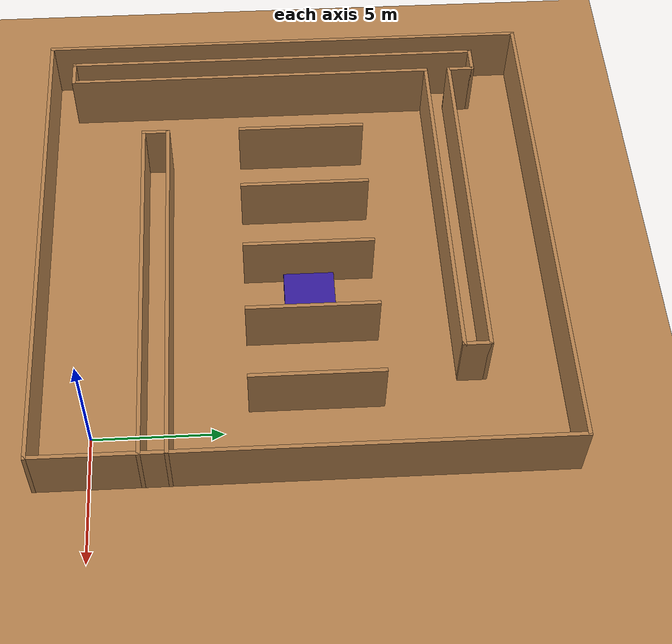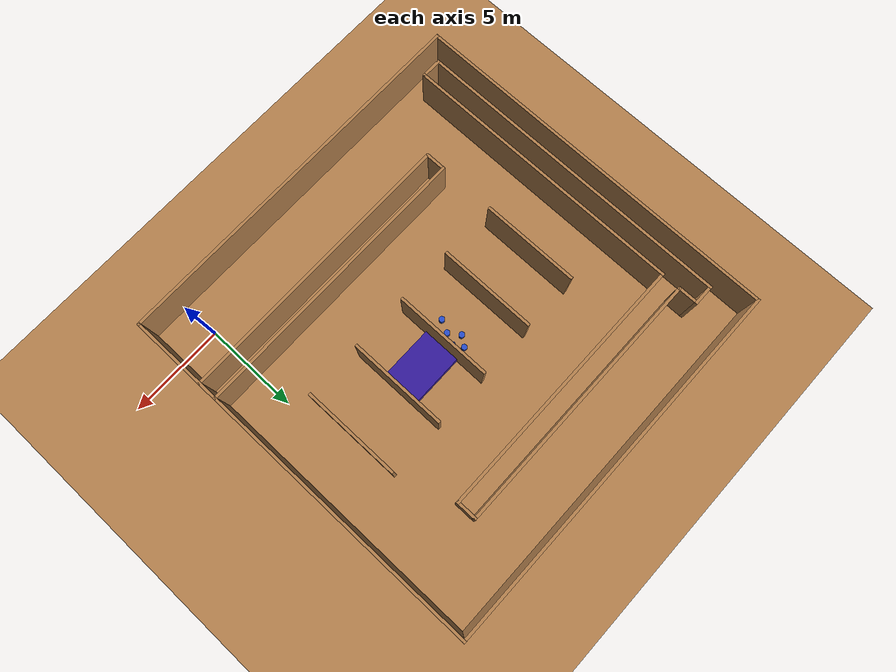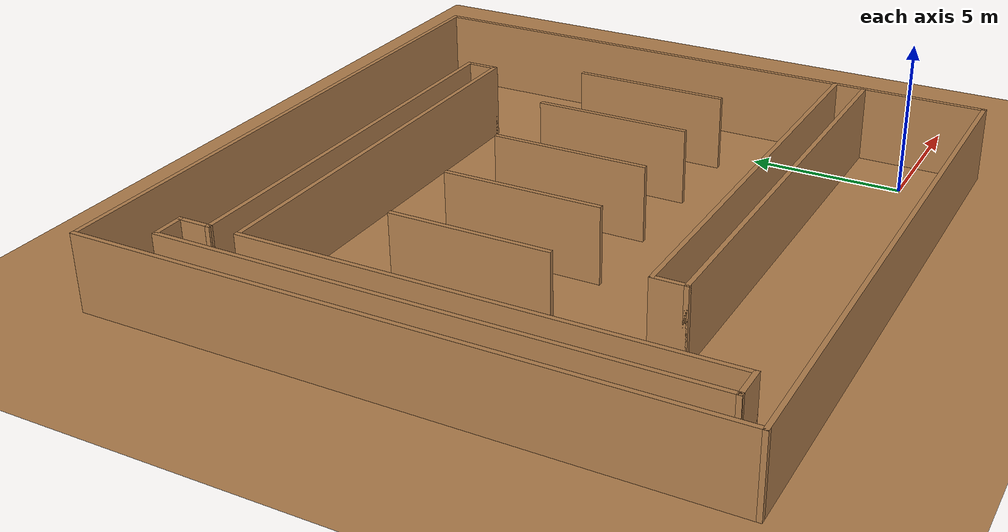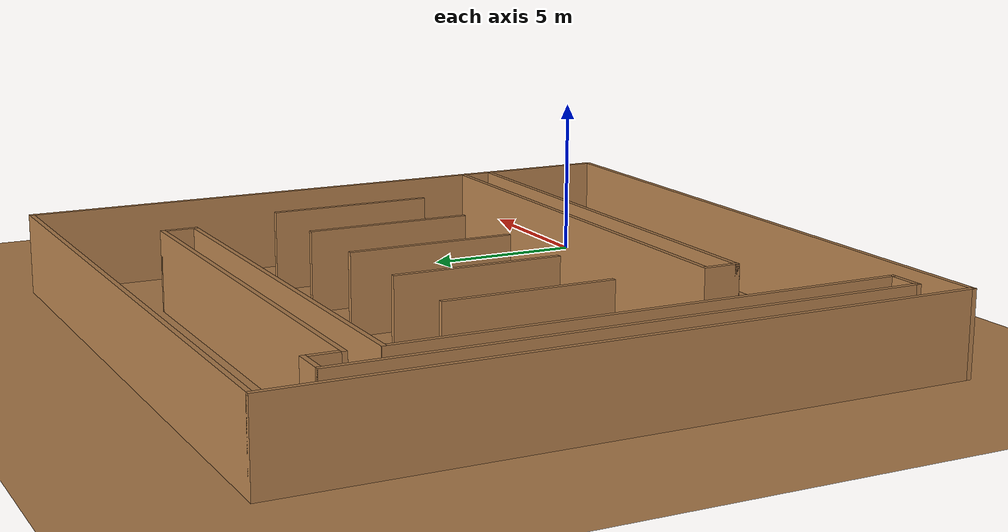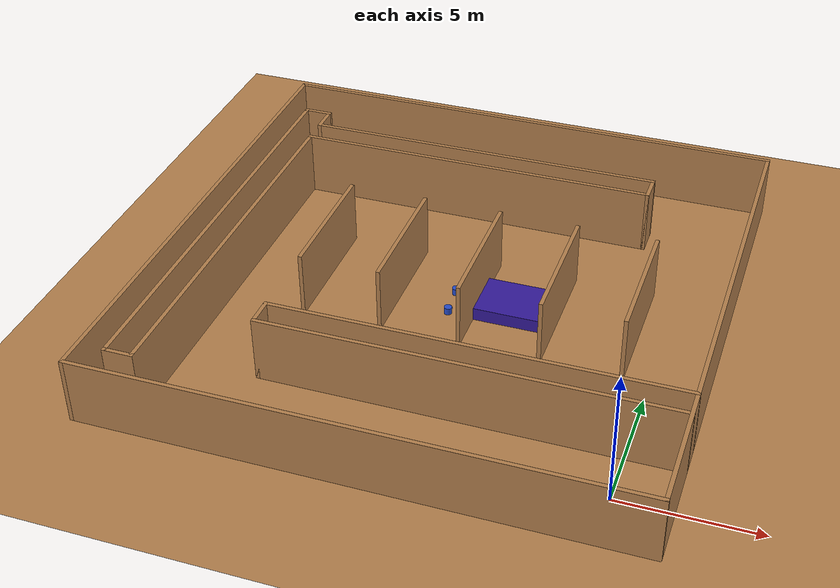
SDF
<sdf version="1.6">
 <world name="default">
  <model name="ground_plane">
   <pose>-8 8 0 0 -0 0</pose>
   <static>1</static>
   <link name="link">
    <collision name="collision">
     <geometry><plane><normal>0 0 1</normal><size>100 100</size></plane></geometry>
     <surface>
      <contact><collide_bitmask>65535</collide_bitmask></contact>
      <friction><ode><mu>100</mu><mu2>50</mu2></ode></friction>
     </surface>
    </collision>
    <visual name="visual">
     <cast_shadows>0</cast_shadows>
     <geometry><plane><normal>0 0 1</normal><size>20 20</size></plane></geometry>
     <material>
      <script><uri>file://media/materials/scripts/gazebo.material</uri><name>Gazebo/WoodFloor</name></script>
     </material>
    </visual>
   </link>
  </model>
  <model name="A1.world">
   <pose>-8 8 0 0 -0 0</pose>
   <link name="Wall_35">
    <collision name="Wall_35_Collision">
     <geometry><box><size>17.15 0.15 2.5</size></box></geometry>
     <pose>0 0 1.25 0 -0 0</pose>
    </collision>
    <visual name="Wall_35_Visual">
     <pose>0 0 1.25 0 -0 0</pose>
     <geometry><box><size>17.15 0.15 2.5</size></box></geometry>
     <material>
      <script><uri>file://media/materials/scripts/gazebo.material</uri><name>Gazebo/Wood</name></script>
      <ambient>1 1 1 1</ambient>
     </material>
     <meta><layer>0</layer></meta>
    </visual>
    <pose>-9 -0.5 0 0 -0 1.5708</pose>
   </link>
   <link name="Wall_37">
    <collision name="Wall_37_Collision">
     <geometry><box><size>1.15 0.15 2.5</size></box></geometry>
     <pose>0 0 1.25 0 -0 0</pose>
    </collision>
    <visual name="Wall_37_Visual">
     <pose>0 0 1.25 0 -0 0</pose>
     <geometry><box><size>1.15 0.15 2.5</size></box></geometry>
     <material>
      <script><uri>file://media/materials/scripts/gazebo.material</uri><name>Gazebo/Wood</name></script>
      <ambient>1 1 1 1</ambient>
     </material>
     <meta><layer>0</layer></meta>
    </visual>
    <pose>-8.5 8 0 0 -0 0</pose>
   </link>
   <link name="Wall_39">
    <collision name="Wall_39_Collision">
     <geometry><box><size>1.15 0.15 2.5</size></box></geometry>
     <pose>0 0 1.25 0 -0 0</pose>
    </collision>
    <visual name="Wall_39_Visual">
     <pose>0 0 1.25 0 -0 0</pose>
     <geometry><box><size>1.15 0.15 2.5</size></box></geometry>
     <material>
      <script><uri>file://media/materials/scripts/gazebo.material</uri><name>Gazebo/Wood</name></script>
      <ambient>1 1 1 1</ambient>
     </material>
     <meta><layer>0</layer></meta>
    </visual>
    <pose>-8.5 -9 0 0 -0 0</pose>
   </link>
   <link name="Wall_4">
    <collision name="Wall_4_Collision">
     <geometry><box><size>20.15 0.15 2.5</size></box></geometry>
     <pose>0 0 1.25 0 -0 0</pose>
    </collision>
    <visual name="Wall_4_Visual">
     <pose>0 0 1.25 0 -0 0</pose>
     <geometry><box><size>20.15 0.15 2.5</size></box></geometry>
     <material>
      <script><uri>file://media/materials/scripts/gazebo.material</uri><name>Gazebo/Wood</name></script>
      <ambient>1 1 1 1</ambient>
     </material>
     <meta><layer>0</layer></meta>
    </visual>
    <pose>-10 0 0 0 -0 1.5708</pose>
   </link>
   <link name="Wall_41">
    <collision name="Wall_41_Collision">
     <geometry><box><size>15.15 0.15 2.5</size></box></geometry>
     <pose>0 0 1.25 0 -0 0</pose>
    </collision>
    <visual name="Wall_41_Visual">
     <pose>0 0 1.25 0 -0 0</pose>
     <geometry><box><size>15.15 0.15 2.5</size></box></geometry>
     <material>
      <script><uri>file://media/materials/scripts/gazebo.material</uri><name>Gazebo/Wood</name></script>
      <ambient>1 1 1 1</ambient>
     </material>
     <meta><layer>0</layer></meta>
    </visual>
    <pose>-8 -1.5 0 0 -0 1.5708</pose>
   </link>
   <link name="Wall_43">
    <collision name="Wall_43_Collision">
     <geometry><box><size>1.15 0.15 2.5</size></box></geometry>
     <pose>0 0 1.25 0 -0 0</pose>
    </collision>
    <visual name="Wall_43_Visual">
     <pose>0 0 1.25 0 -0 0</pose>
     <geometry><box><size>1.15 0.15 2.5</size></box></geometry>
     <material>
      <script><uri>file://media/materials/scripts/gazebo.material</uri><name>Gazebo/Wood</name></script>
      <ambient>1 1 1 1</ambient>
     </material>
     <meta><layer>0</layer></meta>
    </visual>
    <pose>-8 7.5 0 0 -0 1.5708</pose>
   </link>
   <link name="Wall_45">
    <collision name="Wall_45_Collision">
     <geometry><box><size>14.15 0.15 2.5</size></box></geometry>
     <pose>0 0 1.25 0 -0 0</pose>
    </collision>
    <visual name="Wall_45_Visual">
     <pose>0 0 1.25 0 -0 0</pose>
     <geometry><box><size>14.15 0.15 2.5</size></box></geometry>
     <material>
      <script><uri>file://media/materials/scripts/gazebo.material</uri><name>Gazebo/Wood</name></script>
      <ambient>1 1 1 1</ambient>
     </material>
     <meta><layer>0</layer></meta>
    </visual>
    <pose>-1 7 0 0 -0 0</pose>
   </link>
   <link name="Wall_47">
    <collision name="Wall_47_Collision">
     <geometry><box><size>14.15 0.15 2.5</size></box></geometry>
     <pose>0 0 1.25 0 -0 0</pose>
    </collision>
    <visual name="Wall_47_Visual">
     <pose>0 0 1.25 0 -0 0</pose>
     <geometry><box><size>14.15 0.15 2.5</size></box></geometry>
     <material>
      <script><uri>file://media/materials/scripts/gazebo.material</uri><name>Gazebo/Wood</name></script>
      <ambient>1 1 1 1</ambient>
     </material>
     <meta><layer>0</layer></meta>
    </visual>
    <pose>-1 6 0 0 -0 0</pose>
   </link>
   <link name="Wall_49">
    <collision name="Wall_49_Collision">
     <geometry><box><size>1.15 0.15 2.5</size></box></geometry>
     <pose>0 0 1.25 0 -0 0</pose>
    </collision>
    <visual name="Wall_49_Visual">
     <pose>0 0 1.25 0 -0 0</pose>
     <geometry><box><size>1.15 0.15 2.5</size></box></geometry>
     <material>
      <script><uri>file://media/materials/scripts/gazebo.material</uri><name>Gazebo/Wood</name></script>
      <ambient>1 1 1 1</ambient>
     </material>
     <meta><layer>0</layer></meta>
    </visual>
    <pose>6 6.5 0 0 -0 1.5708</pose>
   </link>
   <link name="Wall_5">
    <collision name="Wall_5_Collision">
     <geometry><box><size>20.15 0.15 2.5</size></box></geometry>
     <pose>0 0 1.25 0 -0 0</pose>
    </collision>
    <visual name="Wall_5_Visual">
     <pose>0 0 1.25 0 -0 0</pose>
     <geometry><box><size>20.15 0.15 2.5</size></box></geometry>
     <material>
      <script><uri>file://media/materials/scripts/gazebo.material</uri><name>Gazebo/Wood</name></script>
      <ambient>1 1 1 1</ambient>
     </material>
     <meta><layer>0</layer></meta>
    </visual>
    <pose>-0 10 0 0 -0 0</pose>
   </link>
   <link name="Wall_51">
    <collision name="Wall_51_Collision">
     <geometry><box><size>15.15 0.15 2.5</size></box></geometry>
     <pose>0 0 1.25 0 -0 0</pose>
    </collision>
    <visual name="Wall_51_Visual">
     <pose>0 0 1.25 0 -0 0</pose>
     <geometry><box><size>15.15 0.15 2.5</size></box></geometry>
     <material>
      <script><uri>file://media/materials/scripts/gazebo.material</uri><name>Gazebo/Wood</name></script>
      <ambient>1 1 1 1</ambient>
     </material>
     <meta><layer>0</layer></meta>
    </visual>
    <pose>2.5 -6 0 0 -0 0</pose>
   </link>
   <link name="Wall_53">
    <collision name="Wall_53_Collision">
     <geometry><box><size>15.15 0.15 2.5</size></box></geometry>
     <pose>0 0 1.25 0 -0 0</pose>
    </collision>
    <visual name="Wall_53_Visual">
     <pose>0 0 1.25 0 -0 0</pose>
     <geometry><box><size>15.15 0.15 2.5</size></box></geometry>
     <material>
      <script><uri>file://media/materials/scripts/gazebo.material</uri><name>Gazebo/Wood</name></script>
      <ambient>1 1 1 1</ambient>
     </material>
     <meta><layer>0</layer></meta>
    </visual>
    <pose>2.5 -5 0 0 -0 3.14159</pose>
   </link>
   <link name="Wall_55">
    <collision name="Wall_55_Collision">
     <geometry><box><size>1.15 0.15 2.5</size></box></geometry>
     <pose>0 0 1.25 0 -0 0</pose>
    </collision>
    <visual name="Wall_55_Visual">
     <pose>0 0 1.25 0 -0 0</pose>
     <geometry><box><size>1.15 0.15 2.5</size></box></geometry>
     <material>
      <script><uri>file://media/materials/scripts/gazebo.material</uri><name>Gazebo/Wood</name></script>
      <ambient>1 1 1 1</ambient>
     </material>
     <meta><layer>0</layer></meta>
    </visual>
    <pose>-5 -5.5 0 0 -0 1.5708</pose>
   </link>
   <link name="Wall_57">
    <collision name="Wall_57_Collision">
     <geometry><box><size>5.15 0.15 2.5</size></box></geometry>
     <pose>0 0 1.25 0 -0 0</pose>
    </collision>
    <visual name="Wall_57_Visual">
     <pose>0 0 1.25 0 -0 0</pose>
     <geometry><box><size>5.15 0.15 2.5</size></box></geometry>
     <material>
      <script><uri>file://media/materials/scripts/gazebo.material</uri><name>Gazebo/Wood</name></script>
      <ambient>1 1 1 1</ambient>
     </material>
     <meta><layer>0</layer></meta>
    </visual>
    <pose>7 0.5 0 0 -0 1.5708</pose>
   </link>
   <link name="Wall_59">
    <collision name="Wall_59_Collision">
     <geometry><box><size>5.15 0.15 2.5</size></box></geometry>
     <pose>0 0 1.25 0 -0 0</pose>
    </collision>
    <visual name="Wall_59_Visual">
     <pose>0 0 1.25 0 -0 0</pose>
     <geometry><box><size>5.15 0.15 2.5</size></box></geometry>
     <material>
      <script><uri>file://media/materials/scripts/gazebo.material</uri><name>Gazebo/Wood</name></script>
      <ambient>1 1 1 1</ambient>
     </material>
     <meta><layer>0</layer></meta>
    </visual>
    <pose>4 0.5 0 0 -0 1.5708</pose>
   </link>
   <link name="Wall_6">
    <collision name="Wall_6_Collision">
     <geometry><box><size>20.15 0.15 2.5</size></box></geometry>
     <pose>0 0 1.25 0 -0 0</pose>
    </collision>
    <visual name="Wall_6_Visual">
     <pose>0 0 1.25 0 -0 0</pose>
     <geometry><box><size>20.15 0.15 2.5</size></box></geometry>
     <material>
      <script><uri>file://media/materials/scripts/gazebo.material</uri><name>Gazebo/Wood</name></script>
      <ambient>1 1 1 1</ambient>
     </material>
     <meta><layer>0</layer></meta>
    </visual>
    <pose>10 0 0 0 -0 -1.5708</pose>
   </link>
   <link name="Wall_61">
    <collision name="Wall_61_Collision">
     <geometry><box><size>5.15 0.15 2.5</size></box></geometry>
     <pose>0 0 1.25 0 -0 0</pose>
    </collision>
    <visual name="Wall_61_Visual">
     <pose>0 0 1.25 0 -0 0</pose>
     <geometry><box><size>5.15 0.15 2.5</size></box></geometry>
     <material>
      <script><uri>file://media/materials/scripts/gazebo.material</uri><name>Gazebo/Wood</name></script>
      <ambient>1 1 1 1</ambient>
     </material>
     <meta><layer>0</layer></meta>
    </visual>
    <pose>1 0.5 0 0 -0 1.5708</pose>
   </link>
   <link name="Wall_63">
    <collision name="Wall_63_Collision">
     <geometry><box><size>5.15 0.15 2.5</size></box></geometry>
     <pose>0 0 1.25 0 -0 0</pose>
    </collision>
    <visual name="Wall_63_Visual">
     <pose>0 0 1.25 0 -0 0</pose>
     <geometry><box><size>5.15 0.15 2.5</size></box></geometry>
     <material>
      <script><uri>file://media/materials/scripts/gazebo.material</uri><name>Gazebo/Wood</name></script>
      <ambient>1 1 1 1</ambient>
     </material>
     <meta><layer>0</layer></meta>
    </visual>
    <pose>-2 0.5 0 0 -0 1.5708</pose>
   </link>
   <link name="Wall_65">
    <collision name="Wall_65_Collision">
     <geometry><box><size>5.15 0.15 2.5</size></box></geometry>
     <pose>0 0 1.25 0 -0 0</pose>
    </collision>
    <visual name="Wall_65_Visual">
     <pose>0 0 1.25 0 -0 0</pose>
     <geometry><box><size>5.15 0.15 2.5</size></box></geometry>
     <material>
      <script><uri>file://media/materials/scripts/gazebo.material</uri><name>Gazebo/Wood</name></script>
      <ambient>1 1 1 1</ambient>
     </material>
     <meta><layer>0</layer></meta>
    </visual>
    <pose>-5 0.5 0 0 -0 1.5708</pose>
   </link>
   <link name="Wall_7">
    <collision name="Wall_7_Collision">
     <geometry><box><size>20.15 0.15 2.5</size></box></geometry>
     <pose>0 0 1.25 0 -0 0</pose>
    </collision>
    <visual name="Wall_7_Visual">
     <pose>0 0 1.25 0 -0 0</pose>
     <geometry><box><size>20.15 0.15 2.5</size></box></geometry>
     <material>
      <script><uri>file://media/materials/scripts/gazebo.material</uri><name>Gazebo/Wood</name></script>
      <ambient>1 1 1 1</ambient>
     </material>
     <meta><layer>0</layer></meta>
    </visual>
    <pose>-0 -10 0 0 -0 3.14159</pose>
   </link>
   <static>1</static>
  </model>
  <model name="unit_cylinder_clone_2">
   <link name="link">
    <inertial>
     <mass>1</mass>
     <inertia><ixx>0.145833</ixx><ixy>0</ixy><ixz>0</ixz><iyy>0.145833</iyy><iyz>0</iyz><izz>0.125</izz></inertia>
    </inertial>
    <visual name="visual">
     <geometry><cylinder><radius>0.15</radius><length>0.267</length></cylinder></geometry>
     <material>
      <script><name>Gazebo/Blue</name><uri>file://media/materials/scripts/gazebo.material</uri></script>
      <shader type="pixel"><normal_map>__default__</normal_map></shader>
      <ambient>0.2 0.6 0.3 1</ambient>
      <diffuse>0.7 0.7 0.7 1</diffuse>
      <specular>0.01 0.01 0.01 1</specular>
      <emissive>0 0 0 1</emissive>
     </material>
    </visual>
    <collision name="collision">
     <geometry><cylinder><radius>0.15</radius><length>0.267</length></cylinder></geometry>
     <surface>
      <friction>
       <ode><mu>1</mu><mu2>1</mu2><fdir1>0 0 0</fdir1><slip1>0</slip1><slip2>0</slip2></ode>
       <torsional>
        <coefficient>1</coefficient>
        <patch_radius>0</patch_radius>
        <surface_radius>0</surface_radius>
        <use_patch_radius>1</use_patch_radius>
        <ode><slip>0</slip></ode>
       </torsional>
      </friction>
      <bounce><restitution_coefficient>0</restitution_coefficient><threshold>1e+06</threshold></bounce>
      <contact>
       <collide_without_contact>0</collide_without_contact>
       <collide_without_contact_bitmask>1</collide_without_contact_bitmask>
       <collide_bitmask>1</collide_bitmask>
       <ode>
        <soft_cfm>0</soft_cfm>
        <soft_erp>0.2</soft_erp>
        <kp>1e+13</kp>
        <kd>1</kd>
        <max_vel>0.01</max_vel>
        <min_depth>0</min_depth>
       </ode>
       <bullet>
        <split_impulse>1</split_impulse>
        <split_impulse_penetration_threshold>-0.01</split_impulse_penetration_threshold>
        <soft_cfm>0</soft_cfm>
        <soft_erp>0.2</soft_erp>
        <kp>1e+13</kp>
        <kd>1</kd>
       </bullet>
      </contact>
     </surface>
    </collision>
   </link>
   <static>0</static>
   <pose>-7.64654 9.32244 0.133492 -2e-06 -1e-06 0</pose>
  </model>
  <model name="unit_cylinder_clone_6">
   <link name="link">
    <inertial>
     <mass>1</mass>
     <inertia><ixx>0.145833</ixx><ixy>0</ixy><ixz>0</ixz><iyy>0.145833</iyy><iyz>0</iyz><izz>0.125</izz></inertia>
    </inertial>
    <visual name="visual">
     <geometry><cylinder><radius>0.15</radius><length>0.267</length></cylinder></geometry>
     <material>
      <script><name>Gazebo/Blue</name><uri>file://media/materials/scripts/gazebo.material</uri></script>
      <shader type="pixel"><normal_map>__default__</normal_map></shader>
      <ambient>0.2 0.6 0.3 1</ambient>
      <diffuse>0.7 0.7 0.7 1</diffuse>
      <specular>0.01 0.01 0.01 1</specular>
      <emissive>0 0 0 1</emissive>
     </material>
    </visual>
    <collision name="collision">
     <geometry><cylinder><radius>0.15</radius><length>0.267</length></cylinder></geometry>
     <surface>
      <friction>
       <ode><mu>1</mu><mu2>1</mu2><fdir1>0 0 0</fdir1><slip1>0</slip1><slip2>0</slip2></ode>
       <torsional>
        <coefficient>1</coefficient>
        <patch_radius>0</patch_radius>
        <surface_radius>0</surface_radius>
        <use_patch_radius>1</use_patch_radius>
        <ode><slip>0</slip></ode>
       </torsional>
      </friction>
      <bounce><restitution_coefficient>0</restitution_coefficient><threshold>1e+06</threshold></bounce>
      <contact>
       <collide_without_contact>0</collide_without_contact>
       <collide_without_contact_bitmask>1</collide_without_contact_bitmask>
       <collide_bitmask>1</collide_bitmask>
       <ode>
        <soft_cfm>0</soft_cfm>
        <soft_erp>0.2</soft_erp>
        <kp>1e+13</kp>
        <kd>1</kd>
        <max_vel>0.01</max_vel>
        <min_depth>0</min_depth>
       </ode>
       <bullet>
        <split_impulse>1</split_impulse>
        <split_impulse_penetration_threshold>-0.01</split_impulse_penetration_threshold>
        <soft_cfm>0</soft_cfm>
        <soft_erp>0.2</soft_erp>
        <kp>1e+13</kp>
        <kd>1</kd>
       </bullet>
      </contact>
     </surface>
    </collision>
   </link>
   <static>0</static>
   <pose>-8.01361 8.82454 0.133492 -2e-06 -1e-06 0</pose>
  </model>
  <model name="unit_cylinder_clone_7">
   <link name="link">
    <inertial>
     <mass>1</mass>
     <inertia><ixx>0.145833</ixx><ixy>0</ixy><ixz>0</ixz><iyy>0.145833</iyy><iyz>0</iyz><izz>0.125</izz></inertia>
    </inertial>
    <visual name="visual">
     <geometry><cylinder><radius>0.15</radius><length>0.267</length></cylinder></geometry>
     <material>
      <script><name>Gazebo/Blue</name><uri>file://media/materials/scripts/gazebo.material</uri></script>
      <shader type="pixel"><normal_map>__default__</normal_map></shader>
      <ambient>0.2 0.6 0.3 1</ambient>
      <diffuse>0.7 0.7 0.7 1</diffuse>
      <specular>0.01 0.01 0.01 1</specular>
      <emissive>0 0 0 1</emissive>
     </material>
    </visual>
    <collision name="collision">
     <geometry><cylinder><radius>0.15</radius><length>0.267</length></cylinder></geometry>
     <surface>
      <friction>
       <ode><mu>1</mu><mu2>1</mu2><fdir1>0 0 0</fdir1><slip1>0</slip1><slip2>0</slip2></ode>
       <torsional>
        <coefficient>1</coefficient>
        <patch_radius>0</patch_radius>
        <surface_radius>0</surface_radius>
        <use_patch_radius>1</use_patch_radius>
        <ode><slip>0</slip></ode>
       </torsional>
      </friction>
      <bounce><restitution_coefficient>0</restitution_coefficient><threshold>1e+06</threshold></bounce>
      <contact>
       <collide_without_contact>0</collide_without_contact>
       <collide_without_contact_bitmask>1</collide_without_contact_bitmask>
       <collide_bitmask>1</collide_bitmask>
       <ode>
        <soft_cfm>0</soft_cfm>
        <soft_erp>0.2</soft_erp>
        <kp>1e+13</kp>
        <kd>1</kd>
        <max_vel>0.01</max_vel>
        <min_depth>0</min_depth>
       </ode>
       <bullet>
        <split_impulse>1</split_impulse>
        <split_impulse_penetration_threshold>-0.01</split_impulse_penetration_threshold>
        <soft_cfm>0</soft_cfm>
        <soft_erp>0.2</soft_erp>
        <kp>1e+13</kp>
        <kd>1</kd>
       </bullet>
      </contact>
     </surface>
    </collision>
   </link>
   <static>0</static>
   <pose>-7.34542 8.81779 0.133499 2e-06 1e-06 0</pose>
  </model>
  <model name="unit_cylinder_clone_11">
   <link name="link">
    <inertial>
     <mass>1</mass>
     <inertia><ixx>0.145833</ixx><ixy>0</ixy><ixz>0</ixz><iyy>0.145833</iyy><iyz>0</iyz><izz>0.125</izz></inertia>
    </inertial>
    <visual name="visual">
     <geometry><cylinder><radius>0.15</radius><length>0.267</length></cylinder></geometry>
     <material>
      <script><name>Gazebo/Blue</name><uri>file://media/materials/scripts/gazebo.material</uri></script>
      <shader type="pixel"><normal_map>__default__</normal_map></shader>
      <ambient>0.2 0.6 0.3 1</ambient>
      <diffuse>0.7 0.7 0.7 1</diffuse>
      <specular>0.01 0.01 0.01 1</specular>
      <emissive>0 0 0 1</emissive>
     </material>
    </visual>
    <collision name="collision">
     <geometry><cylinder><radius>0.15</radius><length>0.267</length></cylinder></geometry>
     <surface>
      <friction>
       <ode><mu>1</mu><mu2>1</mu2><fdir1>0 0 0</fdir1><slip1>0</slip1><slip2>0</slip2></ode>
       <torsional>
        <coefficient>1</coefficient>
        <patch_radius>0</patch_radius>
        <surface_radius>0</surface_radius>
        <use_patch_radius>1</use_patch_radius>
        <ode><slip>0</slip></ode>
       </torsional>
      </friction>
      <bounce><restitution_coefficient>0</restitution_coefficient><threshold>1e+06</threshold></bounce>
      <contact>
       <collide_without_contact>0</collide_without_contact>
       <collide_without_contact_bitmask>1</collide_without_contact_bitmask>
       <collide_bitmask>1</collide_bitmask>
       <ode>
        <soft_cfm>0</soft_cfm>
        <soft_erp>0.2</soft_erp>
        <kp>1e+13</kp>
        <kd>1</kd>
        <max_vel>0.01</max_vel>
        <min_depth>0</min_depth>
       </ode>
       <bullet>
        <split_impulse>1</split_impulse>
        <split_impulse_penetration_threshold>-0.01</split_impulse_penetration_threshold>
        <soft_cfm>0</soft_cfm>
        <soft_erp>0.2</soft_erp>
        <kp>1e+13</kp>
        <kd>1</kd>
       </bullet>
      </contact>
     </surface>
    </collision>
   </link>
   <static>0</static>
   <pose>-7.6013 8.23691 0.133492 -2e-06 -1e-06 0</pose>
  </model>
  <model name="unit_cylinder_clone_14">
   <link name="link">
    <inertial>
     <mass>1</mass>
     <inertia><ixx>0.145833</ixx><ixy>0</ixy><ixz>0</ixz><iyy>0.145833</iyy><iyz>0</iyz><izz>0.125</izz></inertia>
    </inertial>
    <visual name="visual">
     <geometry><cylinder><radius>0.15</radius><length>0.267</length></cylinder></geometry>
     <material>
      <script><name>Gazebo/Blue</name><uri>file://media/materials/scripts/gazebo.material</uri></script>
      <shader type="pixel"><normal_map>__default__</normal_map></shader>
      <ambient>0.2 0.6 0.3 1</ambient>
      <diffuse>0.7 0.7 0.7 1</diffuse>
      <specular>0.01 0.01 0.01 1</specular>
      <emissive>0 0 0 1</emissive>
     </material>
    </visual>
    <collision name="collision">
     <geometry><cylinder><radius>0.15</radius><length>0.267</length></cylinder></geometry>
     <surface>
      <friction>
       <ode><mu>1</mu><mu2>1</mu2><fdir1>0 0 0</fdir1><slip1>0</slip1><slip2>0</slip2></ode>
       <torsional>
        <coefficient>1</coefficient>
        <patch_radius>0</patch_radius>
        <surface_radius>0</surface_radius>
        <use_patch_radius>1</use_patch_radius>
        <ode><slip>0</slip></ode>
       </torsional>
      </friction>
      <bounce><restitution_coefficient>0</restitution_coefficient><threshold>1e+06</threshold></bounce>
      <contact>
       <collide_without_contact>0</collide_without_contact>
       <collide_without_contact_bitmask>1</collide_without_contact_bitmask>
       <collide_bitmask>1</collide_bitmask>
       <ode>
        <soft_cfm>0</soft_cfm>
        <soft_erp>0.2</soft_erp>
        <kp>1e+13</kp>
        <kd>1</kd>
        <max_vel>0.01</max_vel>
        <min_depth>0</min_depth>
       </ode>
       <bullet>
        <split_impulse>1</split_impulse>
        <split_impulse_penetration_threshold>-0.01</split_impulse_penetration_threshold>
        <soft_cfm>0</soft_cfm>
        <soft_erp>0.2</soft_erp>
        <kp>1e+13</kp>
        <kd>1</kd>
       </bullet>
      </contact>
     </surface>
    </collision>
   </link>
   <static>0</static>
   <pose>-7.92561 7.60062 0.133492 -2e-06 -2e-06 0</pose>
  </model>
  <model name="unit_cylinder_clone_15">
   <link name="link">
    <inertial>
     <mass>1</mass>
     <inertia><ixx>0.145833</ixx><ixy>0</ixy><ixz>0</ixz><iyy>0.145833</iyy><iyz>0</iyz><izz>0.125</izz></inertia>
    </inertial>
    <visual name="visual">
     <geometry><cylinder><radius>0.15</radius><length>0.267</length></cylinder></geometry>
     <material>
      <script><name>Gazebo/Blue</name><uri>file://media/materials/scripts/gazebo.material</uri></script>
      <shader type="pixel"><normal_map>__default__</normal_map></shader>
      <ambient>0.2 0.6 0.3 1</ambient>
      <diffuse>0.7 0.7 0.7 1</diffuse>
      <specular>0.01 0.01 0.01 1</specular>
      <emissive>0 0 0 1</emissive>
     </material>
    </visual>
    <collision name="collision">
     <geometry><cylinder><radius>0.15</radius><length>0.267</length></cylinder></geometry>
     <surface>
      <friction>
       <ode><mu>1</mu><mu2>1</mu2><fdir1>0 0 0</fdir1><slip1>0</slip1><slip2>0</slip2></ode>
       <torsional>
        <coefficient>1</coefficient>
        <patch_radius>0</patch_radius>
        <surface_radius>0</surface_radius>
        <use_patch_radius>1</use_patch_radius>
        <ode><slip>0</slip></ode>
       </torsional>
      </friction>
      <bounce><restitution_coefficient>0</restitution_coefficient><threshold>1e+06</threshold></bounce>
      <contact>
       <collide_without_contact>0</collide_without_contact>
       <collide_without_contact_bitmask>1</collide_without_contact_bitmask>
       <collide_bitmask>1</collide_bitmask>
       <ode>
        <soft_cfm>0</soft_cfm>
        <soft_erp>0.2</soft_erp>
        <kp>1e+13</kp>
        <kd>1</kd>
        <max_vel>0.01</max_vel>
        <min_depth>0</min_depth>
       </ode>
       <bullet>
        <split_impulse>1</split_impulse>
        <split_impulse_penetration_threshold>-0.01</split_impulse_penetration_threshold>
        <soft_cfm>0</soft_cfm>
        <soft_erp>0.2</soft_erp>
        <kp>1e+13</kp>
        <kd>1</kd>
       </bullet>
      </contact>
     </surface>
    </collision>
   </link>
   <static>0</static>
   <pose>-7.2836 7.59752 0.133498 2e-06 2e-06 0</pose>
  </model>
  <model name="unit_box">
   <link name="link">
    <inertial>
     <mass>1</mass>
     <inertia>
      <ixx>0.166667</ixx>
      <ixy>0</ixy>
      <ixz>0</ixz>
      <iyy>0.166667</iyy>
      <iyz>0</iyz>
      <izz>0.166667</izz>
     </inertia>
    </inertial>
    <visual name="visual">
     <geometry><box><size>3 2 0.5</size></box></geometry>
     <material>
      <script><name>Gazebo/Grey</name><uri>file://media/materials/scripts/gazebo.material</uri></script>
      <shader type="pixel"><normal_map>__default__</normal_map></shader>
      <ambient>0.3 0.3 0.3 1</ambient>
      <diffuse>0.2 0.1 0.6 1</diffuse>
      <specular>0.2 0.1 0.6 1</specular>
      <emissive>0.2 0.1 0.6 1</emissive>
     </material>
    </visual>
    <collision name="collision">
     <geometry><box><size>3 2 0.5</size></box></geometry>
     <surface>
      <friction>
       <ode><mu>1</mu><mu2>1</mu2><fdir1>0 0 0</fdir1><slip1>0</slip1><slip2>0</slip2></ode>
       <torsional>
        <coefficient>1</coefficient>
        <patch_radius>0</patch_radius>
        <surface_radius>0</surface_radius>
        <use_patch_radius>1</use_patch_radius>
        <ode><slip>0</slip></ode>
       </torsional>
      </friction>
      <bounce><restitution_coefficient>0</restitution_coefficient><threshold>1e+06</threshold></bounce>
      <contact>
       <collide_without_contact>0</collide_without_contact>
       <collide_without_contact_bitmask>1</collide_without_contact_bitmask>
       <collide_bitmask>1</collide_bitmask>
       <ode>
        <soft_cfm>0</soft_cfm>
        <soft_erp>0.2</soft_erp>
        <kp>1e+13</kp>
        <kd>1</kd>
        <max_vel>0.01</max_vel>
        <min_depth>0</min_depth>
       </ode>
       <bullet>
        <split_impulse>1</split_impulse>
        <split_impulse_penetration_threshold>-0.01</split_impulse_penetration_threshold>
        <soft_cfm>0</soft_cfm>
        <soft_erp>0.2</soft_erp>
        <kp>1e+13</kp>
        <kd>1</kd>
       </bullet>
      </contact>
     </surface>
    </collision>
   </link>
   <static>0</static>
   <pose>-5.5 8.5 0.25 1e-05 -0 0</pose>
  </model>
 </world>
</sdf>
